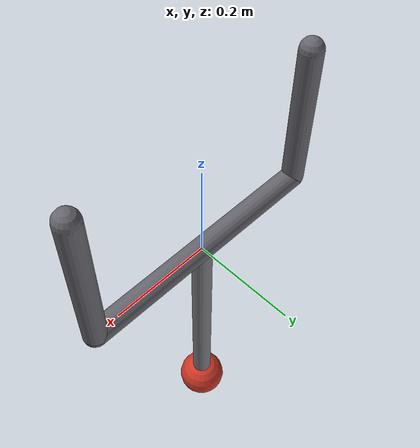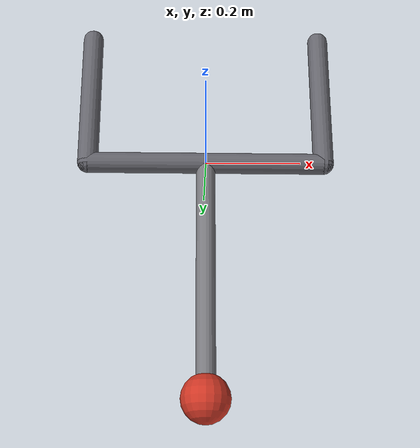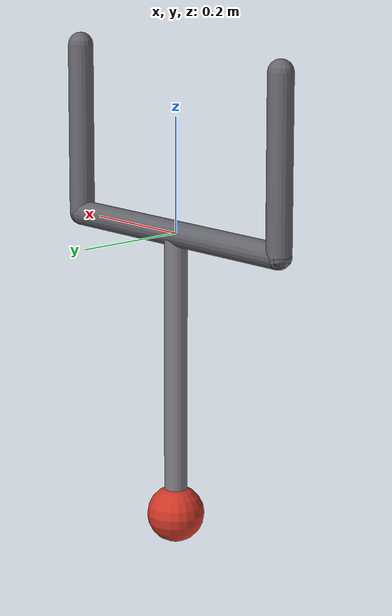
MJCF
<mujoco model="frame_pos_quat">
    <compiler angle="radian"/>
    <option gravity="0 0 -9.81" timestep="0.001" integrator="RK4">
        <flag energy="enable"/>
    </option>

    <default>
        <geom contype="0" conaffinity="0"/>
    </default>

    <worldbody>
        <!-- Support frame -->
        <geom name="beam" type="capsule" size="0.022"
              fromto="-0.25 0 0  0.25 0 0" rgba="0.40 0.40 0.43 1"/>
        <geom name="post_l" type="capsule" size="0.022"
              fromto="-0.25 0 0  -0.25 0 0.30" rgba="0.40 0.40 0.43 1"/>
        <geom name="post_r" type="capsule" size="0.022"
              fromto="0.25 0 0  0.25 0 0.30" rgba="0.40 0.40 0.43 1"/>

        <body name="pendulum" pos="0 0 0">
            <joint name="ball" type="ball" damping="0"/>
            <inertial pos="0 0 -0.5" mass="1.0" diaginertia="0.001 0.001 0.001"/>
            <geom name="rod" type="capsule" size="0.02"
                  fromto="0 0 0  0 0 -0.5" rgba="0.48 0.48 0.50 1"/>
            <geom name="tip" type="sphere" size="0.05"
                  pos="0 0 -0.5" rgba="0.82 0.22 0.15 1"/>
            <site name="tip_site" pos="0 0 -0.5"/>
        </body>
    </worldbody>

    <sensor>
        <framepos name="tip_pos" site="tip_site"/>
        <framequat name="tip_quat" site="tip_site"/>
    </sensor>
</mujoco>
